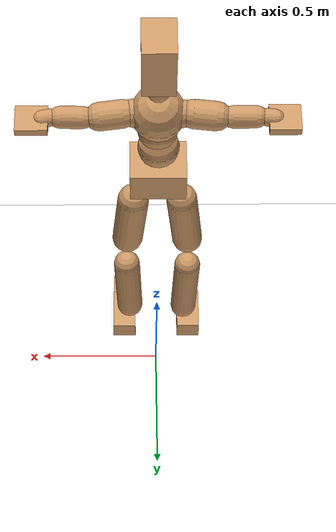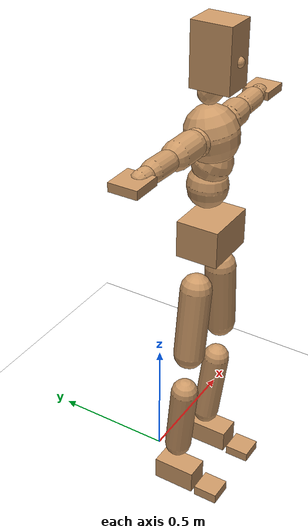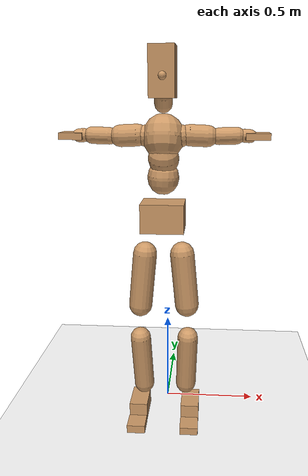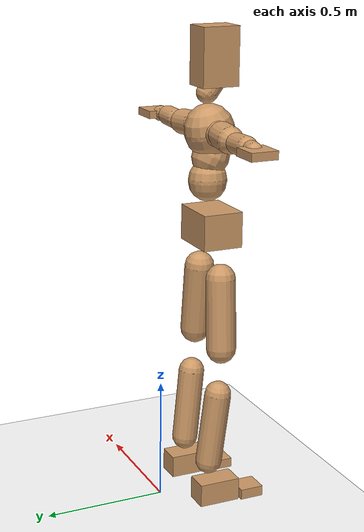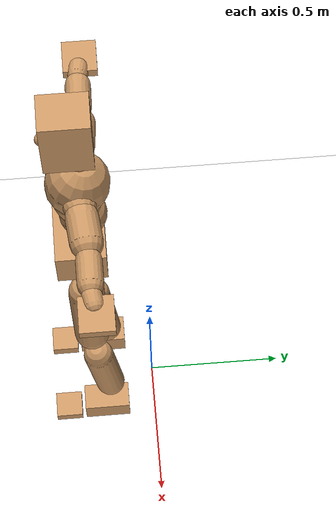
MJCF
<mujoco model="humanoid">
  <option integrator="implicitfast" />

  <visual>
    <global offwidth="1280" offheight="960" />
    <headlight active="1" ambient="0.34 0.34 0.34" diffuse="0.5 0.5 0.5" />
  </visual>

  <default>
    <joint damping="2" stiffness="2" armature="0.01" limited="true" solimplimit="0 .99 .01" />
    <geom condim="1" friction="0.7 0.005 0.0001" solimp=".99 .99 .003" solref="0.015 1" margin="0.001" rgba="0.8 0.6 .4 1" />
    <default class="smplcontact">
      <geom condim="3" friction="1. 0.005 0.0001" solref="0.015 1" solimp="0.98 0.98 0.001" priority="1" />
    </default>
    <default class="stiff_medium">
      <joint stiffness="10" />
    </default>
    <default class="stiff_medium_higher">
      <joint stiffness="50" />
    </default>
    <default class="stiff_high">
      <joint stiffness="100" />
    </default>
  </default>

  <asset>
    <texture type="skybox" builtin="gradient" rgb1="0.99 0.99 0.99" rgb2="0.608 0.828 0.892" width="100" />
    <texture builtin="flat" height="1278" mark="cross" markrgb="1 1 1" name="texgeom" random="0.01" rgb1="0.8 0.6 0.4" rgb2="0.8 0.6 0.4" type="cube" width="127" />
    <texture name="texplane" type="2d" builtin="checker" markrgb="1 1 1" rgb1="0.756 0.772 0.76" rgb2="0.6 0.6 0.6" width="100" height="100" />
    <material name="MatPlane" reflectance="0.5" texture="texplane" texrepeat="1 1" texuniform="true" />
    <material name="geom" texture="texgeom" texuniform="true" />
  </asset>

  <worldbody>
    <light name="tracking_light" pos="0 0 7" dir="0 0 -1" directional="true" cutoff="100" exponent="1" diffuse="1 1 1" specular="0.1 0.1 0.1" mode="trackcom" />
    <camera name="back" pos="0 3 2.4" xyaxes="-1 0 0 0 -1 2" mode="trackcom" />
    <camera name="side" pos="-3 0 2.4" xyaxes="0 -1 0 1 0 2" mode="trackcom" />
    <camera name="front_side" pos="-2.8 -2.8 0.8" xyaxes="0.5 -0.5 0 0.1 0.1 1" mode="trackcom" />
    <geom condim="3" name="floor" pos="0 0 0" rgba="1 1 1 1" size="100 100 .2" type="plane" material="MatPlane" />
    <body name="Pelvis" pos="-0.0018 -0.2233 1.16548" euler="90 0 0">
      <site name="Pelvis" size="0.01" />
      <freejoint name="Pelvis" />
      <geom type="box" pos="-0.0000 -0.0121 -0.0055" size="0.1069 0.0722 0.083" quat="1.0000 0.0000 0.0000 0.0000" density="3165.830099" name="Pelvis" />
      <body name="L_Hip" pos="0.086875 -0.11425 -0.0085">
        <joint name="L_Hip_x" type="hinge" pos="0 0 0" axis="1 0 0" stiffness="14.589841836734694" range="-160.0 22.92" class="stiff_medium" damping="24.10689143795971" armature="0.017703099984975993"/>
        <joint name="L_Hip_y" type="hinge" pos="0 0 0" axis="0 1 0" stiffness="14.527612551020406" range="-70.0 70.0" class="stiff_medium" damping="14.262213477061756" armature="0.014001662871370741"/>
        <joint name="L_Hip_z" type="hinge" pos="0 0 0" axis="0 0 1" stiffness="14.532940204081633" range="-28.65 90.0" class="stiff_medium" damping="16.042326803653772" armature="0.01770847782081624"/>
        <geom type="capsule" density="2040.816327" fromto="0.008625 -0.09375 -0.001125 0.03425 -0.37525 -0.0045" size="0.0615" name="L_Hip" />
        <body name="L_Knee" pos="0.042875 -0.469 -0.005625">
          <joint name="L_Knee_x" type="hinge" pos="0 0 0" axis="1 0 0" range="-5.16 171.89" damping="12.427866473289075" armature="0.016955687393418715" stiffness="2.8466087346938775"/>
          <joint name="L_Knee_y" type="hinge" pos="0 0 0" axis="0 1 0" range="-4.58 6.88" damping="11.131948599716754" armature="0.01340453819008715" stiffness="2.888953489795919"/>
          <joint name="L_Knee_z" type="hinge" pos="0 0 0" axis="0 0 1" range="-6.88 4.58" damping="12.396032357314198" armature="0.016980355499687946" stiffness="2.8279299387755104"/>
          <geom type="capsule" density="1234.567901" fromto="-0.003375 -0.0995 -0.010875 -0.013625 -0.398 -0.04375" size="0.0541" name="L_Knee" />
          <body name="L_Ankle" pos="-0.017 -0.4975 -0.054625">
            <joint name="L_Ankle_x" type="hinge" pos="0 0 0" axis="1 0 0" range="-45.84 45.84" class="stiff_medium" damping="7.851672460898017" armature="0.01369972454071652" stiffness="12.5"/>
            <joint name="L_Ankle_y" type="hinge" pos="0 0 0" axis="0 1 0" range="-74.48 22.92" class="stiff_medium" damping="3.90606547180543" armature="0.01356208664002718" stiffness="12.5"/>
            <joint name="L_Ankle_z" type="hinge" pos="0 0 0" axis="0 0 1" range="-4.58 4.58" class="stiff_medium" damping="7.548153538649445" armature="0.012661027076228031" stiffness="12.5"/>
            <geom type="box" pos="0.029125 -0.029875 0.03025" size="0.0483 0.0464 0.085" quat="1.0000 0.0000 0.0000 0.0000" density="449.071558" name="L_Ankle" class="smplcontact" />
            <body name="L_Toe" pos="0.033 -0.06975 0.149125">
              <joint name="L_Toe_x" type="hinge" pos="0 0 0" axis="1 0 0" range="-91.67 22.92" armature="0.012138557001779706" damping="2.4635905708720864" stiffness="2.5"/>
              <joint name="L_Toe_y" type="hinge" pos="0 0 0" axis="0 1 0" range="-4.58 4.58" armature="0.011506786054687992" damping="2.398623152423906" stiffness="2.5"/>
              <joint name="L_Toe_z" type="hinge" pos="0 0 0" axis="0 0 1" range="-4.58 4.58" armature="0.010229379204576448" damping="2.261567952171286" stiffness="2.5"/>
              <geom type="box" pos="-0.00375 0.006875 0.031" size="0.0478 0.02 0.0496" quat="1.0000 0.0000 0.0000 0.0000" density="423.206892" name="L_Toe" class="smplcontact" />
            </body>
          </body>
        </body>
      </body>
      <body name="R_Hip" pos="-0.084625 -0.113125 -0.005375">
        <joint name="R_Hip_x" type="hinge" pos="0 0 0" axis="1 0 0" stiffness="14.589841836734694" range="-160.0 22.92" class="stiff_medium" damping="24.10689143795971" armature="0.017703099984975993"/>
        <joint name="R_Hip_y" type="hinge" pos="0 0 0" axis="0 1 0" stiffness="14.527612551020406" range="-70.0 70.0" class="stiff_medium" damping="14.262213477061756" armature="0.014001662871370741"/>
        <joint name="R_Hip_z" type="hinge" pos="0 0 0" axis="0 0 1" stiffness="14.532940204081633" range="-90.0 28.65" class="stiff_medium" damping="16.042326803653772" armature="0.01770847782081624"/>
        <geom type="capsule" density="2040.816327" fromto="-0.009625 -0.095625 -0.00225 -0.03825 -0.382625 -0.008875" size="0.0606" name="R_Hip" />
        <body name="R_Knee" pos="-0.047875 -0.47825 -0.011125">
          <joint name="R_Knee_x" type="hinge" pos="0 0 0" axis="1 0 0" range="-5.16 171.89" damping="12.427866473289075" armature="0.016955687393418715" stiffness="2.8466087346938775"/>
          <joint name="R_Knee_y" type="hinge" pos="0 0 0" axis="0 1 0" range="-6.88 4.58" damping="11.131948599716754" armature="0.01340453819008715" stiffness="2.888953489795919"/>
          <joint name="R_Knee_z" type="hinge" pos="0 0 0" axis="0 0 1" range="-4.58 6.88" damping="12.396032357314198" armature="0.016980355499687946" stiffness="2.8279299387755104"/>
          <geom type="capsule" density="1234.567901" fromto="0.004 -0.099625 -0.010625 0.01575 -0.398375 -0.04225" size="0.0541" name="R_Knee" />
          <body name="R_Ankle" pos="0.01975 -0.498 -0.052875">
            <joint name="R_Ankle_x" type="hinge" pos="0 0 0" axis="1 0 0" range="-45.84 45.84" class="stiff_medium" damping="7.851672460898017" armature="0.01369972454071652" stiffness="12.5"/>
            <joint name="R_Ankle_y" type="hinge" pos="0 0 0" axis="0 1 0" range="-22.92 74.48" class="stiff_medium" damping="3.90606547180543" armature="0.01356208664002718" stiffness="12.5"/>
            <joint name="R_Ankle_z" type="hinge" pos="0 0 0" axis="0 0 1" range="-4.58 4.58" class="stiff_medium" damping="7.548153538649445" armature="0.012661027076228031" stiffness="12.5"/>
            <geom type="box" pos="-0.0265 -0.02175 0.032" size="0.0483 0.0478 0.0865" quat="1.0000 0.0000 0.0000 0.0000" density="434.700981" name="R_Ankle" class="smplcontact" />
            <body name="R_Toe" pos="-0.03175 -0.060125 0.154125">
              <joint name="R_Toe_x" type="hinge" pos="0 0 0" axis="1 0 0" range="-91.67 22.92" armature="0.012138557001779706" damping="2.4635905708720864" stiffness="2.5"/>
              <joint name="R_Toe_y" type="hinge" pos="0 0 0" axis="0 1 0" range="-4.58 4.58" armature="0.011506786054687992" damping="2.398623152423906" stiffness="2.5"/>
              <joint name="R_Toe_z" type="hinge" pos="0 0 0" axis="0 0 1" range="-4.58 4.58" armature="0.010229379204576448" damping="2.261567952171286" stiffness="2.5"/>
              <geom type="box" pos="0.00525 0.005625 0.028375" size="0.0479 0.0216 0.0493" quat="1.0000 0.0000 0.0000 0.0000" density="407.384095" name="R_Toe" class="smplcontact" />
            </body>
          </body>
        </body>
      </body>
      <body name="Torso" pos="-0.0025 0.109 -0.0267">
        <joint name="Torso_x" type="hinge" pos="0 0 0" axis="1 0 0" range="-25.78 57.3" class="stiff_medium" damping="12.833128643120643" armature="0.008389867755726707" stiffness="8.724237142857143"/>
        <joint name="Torso_y" type="hinge" pos="0 0 0" axis="0 1 0" range="-57.3 57.3" class="stiff_high" damping="9.641007877053584" armature="0.002615251180296176" stiffness="88.85287346938776"/>
        <joint name="Torso_z" type="hinge" pos="0 0 0" axis="0 0 1" range="-34.38 34.38" class="stiff_high" damping="15.256621848072813" armature="0.006404603814601964" stiffness="90.85827826086955"/>
        <geom type="capsule" density="2040.816327" fromto="0.0025 0.0608 0.0005 0.003 0.0743 0.0006" size="0.0769" name="Torso" />
        <body name="Spine" pos="0.0055 0.1352 0.0011">
          <joint name="Spine_x" type="hinge" pos="0 0 0" axis="1 0 0" stiffness="8.524132708333333" range="-25.78 57.3" class="stiff_medium" damping="12.59332818615459" armature="0.008268911088118537"/>
          <joint name="Spine_y" type="hinge" pos="0 0 0" axis="0 1 0" stiffness="8.372724772727274" range="-57.3 57.3" class="stiff_high" damping="3.7058359647278705" armature="0.002562864197858745"/>
          <joint name="Spine_z" type="hinge" pos="0 0 0" axis="0 0 1" stiffness="17.091765581395343" range="-34.38 34.38" class="stiff_high" damping="7.912330782724084" armature="0.005087324565503508"/>
          <geom type="capsule" density="2040.816327" fromto="0.0007 0.0238 0.0114 0.0008 0.0291 0.014" size="0.0755" name="Spine" />
          <body name="Chest" pos="0.0015 0.0529 0.0254">
            <joint name="Chest_x" type="hinge" pos="0 0 0" axis="1 0 0" stiffness="8.200278372093024" range="-25.78 57.3" class="stiff_medium" damping="12.31981661549887" armature="0.008226164178146745"/>
            <joint name="Chest_y" type="hinge" pos="0 0 0" axis="0 1 0" stiffness="6.66116392857143" range="-57.3 57.3" class="stiff_high" damping="3.2862373670032503" armature="0.0025331899922285133"/>
            <joint name="Chest_z" type="hinge" pos="0 0 0" axis="0 0 1" stiffness="16.64932651162791" range="-34.38 34.38" class="stiff_high" damping="7.360514262532794" armature="0.004519466278837104"/>
            <geom type="capsule" density="2040.816327" fromto="-0.0009 0.0682 -0.0173 -0.001 0.0833 -0.0212" size="0.1002" name="Chest" />
            <body name="Neck" pos="-0.0028 0.2139 -0.0429">
              <joint name="Neck_x" type="hinge" pos="0 0 0" axis="1 0 0" range="-28.65 57.3" class="stiff_medium_higher" damping="10.000000000000027" armature="0.010000000000000054" stiffness="50.0"/>
              <joint name="Neck_y" type="hinge" pos="0 0 0" axis="0 1 0" range="-40.11 40.11" class="stiff_medium_higher" damping="10.0" armature="0.01" stiffness="50.0"/>
              <joint name="Neck_z" type="hinge" pos="0 0 0" axis="0 0 1" range="-40.11 40.11" class="stiff_medium_higher" damping="10.000000000000028" armature="0.010000000000000061" stiffness="50.0"/>
              <geom type="capsule" density="1000" fromto="0.001 0.013 0.0103 0.0041 0.052 0.0411" size="0.0436" name="Neck" />
              <body name="Head" pos="0.0052 0.065 0.0513">
                <joint name="Head_x" type="hinge" pos="0 0 0" axis="1 0 0" range="-28.65 57.3" class="stiff_medium_higher" damping="2.0000000000000036" armature="0.010000000000000035" stiffness="50.0"/>
                <joint name="Head_y" type="hinge" pos="0 0 0" axis="0 1 0" range="-40.11 40.11" class="stiff_medium_higher" damping="2.0" armature="0.01" stiffness="50.0"/>
                <joint name="Head_z" type="hinge" pos="0 0 0" axis="0 0 1" range="-40.11 40.11" class="stiff_medium_higher" damping="2.000000000000007" armature="0.010000000000000071" stiffness="50.0"/>
                <geom type="box" pos="-0.0042 0.0876 -0.0116" size="0.0606 0.1154 0.076" quat="1.0000 0.0000 0.0000 0.0000" density="1018.069894" name="Head" />
                <geom type="capsule" name="nose" size="0.02 0.01" pos="0 0.07 0.05" quat="1 0 0 0" mass="0" contype="0" conaffinity="0" />
              </body>
            </body>
            <body name="L_Thorax" pos="0.04334 0.066935 -0.018755">
              <joint name="L_Thorax_x" type="hinge" pos="0 0 0" axis="1 0 0" range="-10.89 4.58" class="stiff_medium_higher" damping="8.43470362156277" armature="0.004456108006307102" stiffness="19.956940306122444"/>
              <joint name="L_Thorax_y" type="hinge" pos="0 0 0" axis="0 1 0" range="-28.65 17.19" class="stiff_medium_higher" damping="6.022763730189365" armature="0.002308462047497596" stiffness="19.641693367346935"/>
              <joint name="L_Thorax_z" type="hinge" pos="0 0 0" axis="0 0 1" range="-31.51 40.11" class="stiff_medium_higher" damping="6.020659652326864" armature="0.0023064402545495085" stiffness="19.64517755102041"/>
              <geom type="capsule" density="1000" fromto="0.01001 0.003355 -0.00099 0.04004 0.01342 -0.003905" size="0.0521" name="L_Thorax" />
              <body name="L_Shoulder" pos="0.05005 0.016775 -0.004895">
                <joint name="L_Shoulder_x" type="hinge" pos="0 0 0" axis="1 0 0" range="-97.4 97.4" class="stiff_medium" damping="2.750732619270388" armature="0.005207580254125744" stiffness="4.036066215805471"/>
                <joint name="L_Shoulder_y" type="hinge" pos="0 0 0" axis="0 1 0" range="-108.86 80.21" class="stiff_medium" damping="1.8298767221096353" armature="0.0023536822566645405" stiffness="3.9517852040816326"/>
                <joint name="L_Shoulder_z" type="hinge" pos="0 0 0" axis="0 0 1" range="-97.4 85.94" class="stiff_medium" damping="1.829909535734247" armature="0.002350748922258391" stiffness="3.9568582653061224"/>
                <geom type="capsule" density="1000" fromto="0.028545 -0.00143 -0.003025 0.114235 -0.00561 -0.0121" size="0.0517" name="L_Shoulder" />
                <body name="L_Elbow" pos="0.14278 -0.00704 -0.015125">
                  <joint name="L_Elbow_x" type="hinge" pos="0 0 0" axis="1 0 0" range="-17.19 4.58" damping="2.6383809861162595" armature="0.0066028902176270875" stiffness="0.8433948163265306"/>
                  <joint name="L_Elbow_y" type="hinge" pos="0 0 0" axis="0 1 0" range="-180.0 17.19" damping="1.649331180076203" armature="0.002582836246104816" stiffness="0.842575551020408"/>
                  <joint name="L_Elbow_z" type="hinge" pos="0 0 0" axis="0 0 1" range="-100.84 4.58" damping="1.6457692537144117" armature="0.0025674453810837143" stiffness="0.8439693265306122"/>
                  <geom type="capsule" density="1000" fromto="0.02739 0.00099 -0.00011 0.10967 0.00396 -0.000495" size="0.0405" name="L_Elbow" />
                  <body name="L_Wrist" pos="0.13706 0.00495 -0.00066">
                    <joint name="L_Wrist_x" type="hinge" pos="0 0 0" axis="1 0 0" range="-180.0 22.92" armature="0.007461834395239045" damping="1.2279494204587622" stiffness="1.0103814285714288"/>
                    <joint name="L_Wrist_y" type="hinge" pos="0 0 0" axis="0 1 0" range="-17.19 17.19" armature="0.003664915616612764" damping="0.8549575346764119" stiffness="0.9972294897959184"/>
                    <joint name="L_Wrist_z" type="hinge" pos="0 0 0" axis="0 0 1" range="-22.92 22.92" armature="0.0034414222692762063" damping="0.8306797080467495" stiffness="1.002534306122449"/>
                    <geom type="capsule" density="1000" fromto="0.00924 -0.00088 -0.00165 0.03696 -0.003575 -0.0066" size="0.0318" name="L_Wrist" class="smplcontact" />
                    <body name="L_Hand" pos="0.0462 -0.00451 -0.008195">
                      <joint name="L_Hand_x" type="hinge" pos="0 0 0" axis="1 0 0" range="-17.19 17.19" armature="0.009696126030368997" damping="1.4605299472044997" stiffness="1.0999999999999999"/>
                      <joint name="L_Hand_y" type="hinge" pos="0 0 0" axis="0 1 0" range="-51.57 51.57" armature="0.006325063576496694" damping="1.1796245109479848" stiffness="1.0999999999999999"/>
                      <joint name="L_Hand_z" type="hinge" pos="0 0 0" axis="0 0 1" range="-91.67 91.67" armature="0.005426460820316668" damping="1.0926213344382705" stiffness="1.0999999999999999"/>
                      <geom type="box" pos="0.027115 0.00055 -0.00319" size="0.0585 0.0158 0.0538" quat="1.0000 0.0000 0.0000 0.0000" density="400.552564" name="L_Hand" class="smplcontact" />
                    </body>
                  </body>
                </body>
              </body>
            </body>
            <body name="R_Thorax" pos="-0.04499 0.06534 -0.02123">
              <joint name="R_Thorax_x" type="hinge" pos="0 0 0" axis="1 0 0" range="-10.89 4.58" class="stiff_medium_higher" damping="8.43470362156277" armature="0.004456108006307102" stiffness="19.956940306122444"/>
              <joint name="R_Thorax_y" type="hinge" pos="0 0 0" axis="0 1 0" range="-17.19 28.65" class="stiff_medium_higher" damping="6.022763730189365" armature="0.002308462047497596" stiffness="19.641693367346935"/>
              <joint name="R_Thorax_z" type="hinge" pos="0 0 0" axis="0 0 1" range="-40.11 31.51" class="stiff_medium_higher" damping="6.020659652326864" armature="0.0023064402545495085" stiffness="19.64517755102041"/>
              <geom type="capsule" density="1000" fromto="-0.01056 0.003575 -0.00099 -0.04224 0.0143 -0.004015" size="0.0511" name="R_Thorax" />
              <body name="R_Shoulder" pos="-0.0528 0.01793 -0.005005">
                <joint name="R_Shoulder_x" type="hinge" pos="0 0 0" axis="1 0 0" range="-97.4 97.4" class="stiff_medium" damping="2.750732619270388" armature="0.005207580254125744" stiffness="4.036066215805471"/>
                <joint name="R_Shoulder_y" type="hinge" pos="0 0 0" axis="0 1 0" range="-80.21 108.86" class="stiff_medium" damping="1.8298767221096353" armature="0.0023536822566645405" stiffness="3.9517852040816326"/>
                <joint name="R_Shoulder_z" type="hinge" pos="0 0 0" axis="0 0 1" range="-85.94 97.4" class="stiff_medium" damping="1.829909535734247" armature="0.002350748922258391" stiffness="3.9568582653061224"/>
                <geom type="capsule" density="1000" fromto="-0.027885 -0.001485 -0.002365 -0.11165 -0.005885 -0.009405" size="0.0531" name="R_Shoulder" />
                <body name="R_Elbow" pos="-0.139535 -0.007315 -0.01177">
                  <joint name="R_Elbow_x" type="hinge" pos="0 0 0" axis="1 0 0" range="-17.19 4.58" damping="2.6383809861162595" armature="0.0066028902176270875" stiffness="0.8433948163265306"/>
                  <joint name="R_Elbow_y" type="hinge" pos="0 0 0" axis="0 1 0" range="-17.19 180.0" damping="1.649331180076203" armature="0.002582836246104816" stiffness="0.842575551020408"/>
                  <joint name="R_Elbow_z" type="hinge" pos="0 0 0" axis="0 0 1" range="-4.58 100.84" damping="1.6457692537144117" armature="0.0025674453810837143" stiffness="0.8439693265306122"/>
                  <geom type="capsule" density="1000" fromto="-0.028105 0.00088 -0.000605 -0.11231 0.00341 -0.00242" size="0.0408" name="R_Elbow" />
                  <body name="R_Wrist" pos="-0.140415 0.00429 -0.00308">
                    <joint name="R_Wrist_x" type="hinge" pos="0 0 0" axis="1 0 0" range="-180.0 22.92" armature="0.007461834395239045" damping="1.2279494204587622" stiffness="1.0103814285714288"/>
                    <joint name="R_Wrist_y" type="hinge" pos="0 0 0" axis="0 1 0" range="-17.19 17.19" armature="0.003664915616612764" damping="0.8549575346764119" stiffness="0.9972294897959184"/>
                    <joint name="R_Wrist_z" type="hinge" pos="0 0 0" axis="0 0 1" range="-22.92 22.92" armature="0.0034414222692762063" damping="0.8306797080467495" stiffness="1.002534306122449"/>
                    <geom type="capsule" density="1000" fromto="-0.009295 -0.00066 -0.001155 -0.037235 -0.002695 -0.004565" size="0.0326" name="R_Wrist" class="smplcontact" />
                    <body name="R_Hand" pos="-0.04653 -0.003355 -0.005665">
                      <joint name="R_Hand_x" type="hinge" pos="0 0 0" axis="1 0 0" range="-17.19 17.19" armature="0.009696126030368997" damping="1.4605299472044997" stiffness="1.0999999999999999"/>
                      <joint name="R_Hand_y" type="hinge" pos="0 0 0" axis="0 1 0" range="-51.57 51.57" armature="0.006325063576496694" damping="1.1796245109479848" stiffness="1.0999999999999999"/>
                      <joint name="R_Hand_z" type="hinge" pos="0 0 0" axis="0 0 1" range="-91.67 91.67" armature="0.005426460820316668" damping="1.0926213344382705" stiffness="1.0999999999999999"/>
                      <geom type="box" pos="-0.02541 -0.000495 -0.004345" size="0.0569 0.0164 0.0546" quat="1.0000 0.0000 0.0000 0.0000" density="403.679611" name="R_Hand" class="smplcontact" />
                    </body>
                  </body>
                </body>
              </body>
            </body>
          </body>
        </body>
      </body>
    </body>
  </worldbody>
  <actuator>
    <general name="L_Hip_x" joint="L_Hip_x" biastype="affine" gainprm="419.21001901187765" biasprm="-314.15541988928595 -262.6171530612245 -3.214252191727961" ctrllimited="true" ctrlrange="-1 1" forcerange="-525.234306122449 525.234306122449" />
    <general name="L_Hip_y" joint="L_Hip_y" biastype="affine" gainprm="319.47888605139207" biasprm="0.0 -261.4970259183673 -2.852442695412351" ctrllimited="true" ctrlrange="-1 1" forcerange="-522.9940518367346 522.9940518367346" />
    <general name="L_Hip_z" joint="L_Hip_z" biastype="affine" gainprm="270.857650054052" biasprm="140.0515535677715 -261.5929236734694 -3.2084653607307545" ctrllimited="true" ctrlrange="-1 1" forcerange="-523.1858473469388 523.1858473469388" />
    <general name="L_Knee_x" joint="L_Knee_x" biastype="affine" gainprm="395.8344512323349" biasprm="372.7618077038531 -256.194786122449 -3.106966618322269" ctrllimited="true" ctrlrange="-1 1" forcerange="-512.389572244898 512.389572244898" />
    <general name="L_Knee_y" joint="L_Knee_y" biastype="affine" gainprm="26.002496647202126" biasprm="5.218651159560636 -260.0058140816327 -2.7829871499291885" ctrllimited="true" ctrlrange="-1 1" forcerange="-520.0116281632654 520.0116281632654" />
    <general name="L_Knee_z" joint="L_Knee_z" biastype="affine" gainprm="25.45324423230062" biasprm="-5.108417254301171 -254.51369448979594 -3.0990080893285494" ctrllimited="true" ctrlrange="-1 1" forcerange="-509.0273889795919 509.0273889795919" />
    <general name="L_Ankle_x" joint="L_Ankle_x" biastype="affine" gainprm="90.00662952534759" biasprm="0.0 -112.5 -2.6172241536326726" ctrllimited="true" ctrlrange="-1 1" forcerange="-225.0 225.0" />
    <general name="L_Ankle_y" joint="L_Ankle_y" biastype="affine" gainprm="95.62222639363935" biasprm="-50.61891163096555 -112.5 -2.6040436478702866" ctrllimited="true" ctrlrange="-1 1" forcerange="-225.0 225.0" />
    <general name="L_Ankle_z" joint="L_Ankle_z" biastype="affine" gainprm="8.992808970900782" biasprm="0.0 -112.5 -2.516051179549815" ctrllimited="true" ctrlrange="-1 1" forcerange="-225.0 225.0" />
    <general name="L_Toe_x" joint="L_Toe_x" biastype="affine" gainprm="89.99877554371359" biasprm="-53.996123733574564 -90.0 -0.9854362283488346" ctrllimited="true" ctrlrange="-1 1" forcerange="-180.0 180.0" />
    <general name="L_Toe_y" joint="L_Toe_y" biastype="affine" gainprm="7.194247176720626" biasprm="0.0 -90.0 -0.9594492609695625" ctrllimited="true" ctrlrange="-1 1" forcerange="-180.0 180.0" />
    <general name="L_Toe_z" joint="L_Toe_z" biastype="affine" gainprm="7.194247176720626" biasprm="0.0 -90.0 -0.9046271808685145" ctrllimited="true" ctrlrange="-1 1" forcerange="-180.0 180.0" />
    <general name="R_Hip_x" joint="R_Hip_x" biastype="affine" gainprm="419.21001901187765" biasprm="-314.15541988928595 -262.6171530612245 -3.214252191727961" ctrllimited="true" ctrlrange="-1 1" forcerange="-525.234306122449 525.234306122449" />
    <general name="R_Hip_y" joint="R_Hip_y" biastype="affine" gainprm="319.47888605139207" biasprm="0.0 -261.4970259183673 -2.852442695412351" ctrllimited="true" ctrlrange="-1 1" forcerange="-522.9940518367346 522.9940518367346" />
    <general name="R_Hip_z" joint="R_Hip_z" biastype="affine" gainprm="270.857650054052" biasprm="-140.0515535677715 -261.5929236734694 -3.2084653607307545" ctrllimited="true" ctrlrange="-1 1" forcerange="-523.1858473469388 523.1858473469388" />
    <general name="R_Knee_x" joint="R_Knee_x" biastype="affine" gainprm="395.8344512323349" biasprm="372.7618077038531 -256.194786122449 -3.106966618322269" ctrllimited="true" ctrlrange="-1 1" forcerange="-512.389572244898 512.389572244898" />
    <general name="R_Knee_y" joint="R_Knee_y" biastype="affine" gainprm="26.002496647202126" biasprm="-5.218651159560636 -260.0058140816327 -2.7829871499291885" ctrllimited="true" ctrlrange="-1 1" forcerange="-520.0116281632654 520.0116281632654" />
    <general name="R_Knee_z" joint="R_Knee_z" biastype="affine" gainprm="25.45324423230062" biasprm="5.108417254301171 -254.51369448979594 -3.0990080893285494" ctrllimited="true" ctrlrange="-1 1" forcerange="-509.0273889795919 509.0273889795919" />
    <general name="R_Ankle_x" joint="R_Ankle_x" biastype="affine" gainprm="90.00662952534759" biasprm="0.0 -112.5 -2.6172241536326726" ctrllimited="true" ctrlrange="-1 1" forcerange="-225.0 225.0" />
    <general name="R_Ankle_y" joint="R_Ankle_y" biastype="affine" gainprm="95.62222639363935" biasprm="50.61891163096555 -112.5 -2.6040436478702866" ctrllimited="true" ctrlrange="-1 1" forcerange="-225.0 225.0" />
    <general name="R_Ankle_z" joint="R_Ankle_z" biastype="affine" gainprm="8.992808970900782" biasprm="0.0 -112.5 -2.516051179549815" ctrllimited="true" ctrlrange="-1 1" forcerange="-225.0 225.0" />
    <general name="R_Toe_x" joint="R_Toe_x" biastype="affine" gainprm="89.99877554371359" biasprm="-53.996123733574564 -90.0 -0.9854362283488346" ctrllimited="true" ctrlrange="-1 1" forcerange="-180.0 180.0" />
    <general name="R_Toe_y" joint="R_Toe_y" biastype="affine" gainprm="7.194247176720626" biasprm="0.0 -90.0 -0.9594492609695625" ctrllimited="true" ctrlrange="-1 1" forcerange="-180.0 180.0" />
    <general name="R_Toe_z" joint="R_Toe_z" biastype="affine" gainprm="7.194247176720626" biasprm="0.0 -90.0 -0.9046271808685145" ctrllimited="true" ctrlrange="-1 1" forcerange="-180.0 180.0" />
    <general name="Torso_x" joint="Torso_x" biastype="affine" gainprm="151.80377221252243" biasprm="57.593342563056154 -209.38169142857143 -3.422167638165505" ctrllimited="true" ctrlrange="-1 1" forcerange="-314.07253714285713 314.07253714285713" />
    <general name="Torso_y" joint="Torso_y" biastype="affine" gainprm="213.26260438991383" biasprm="0.0 -213.24689632653062 -1.9282015754107167" ctrllimited="true" ctrlrange="-1 1" forcerange="-319.8703444897959 319.8703444897959" />
    <general name="Torso_z" joint="Torso_z" biastype="affine" gainprm="130.84555825179245" biasprm="0.0 -218.05986782608693 -3.0513243696145627" ctrllimited="true" ctrlrange="-1 1" forcerange="-327.0898017391304 327.0898017391304" />
    <general name="Spine_x" joint="Spine_x" biastype="affine" gainprm="148.32190812518058" biasprm="56.272346462514335 -204.579185 -3.358220849641224" ctrllimited="true" ctrlrange="-1 1" forcerange="-306.86877749999996 306.86877749999996" />
    <general name="Spine_y" joint="Spine_y" biastype="affine" gainprm="200.96019646308363" biasprm="0.0 -200.94539454545458 -1.8529179823639352" ctrllimited="true" ctrlrange="-1 1" forcerange="-301.41809181818184 301.41809181818184" />
    <general name="Spine_z" joint="Spine_z" biastype="affine" gainprm="123.06977700949903" biasprm="0.0 -205.10118697674412 -2.637443594241361" ctrllimited="true" ctrlrange="-1 1" forcerange="-307.6517804651162 307.6517804651162" />
    <general name="Chest_x" joint="Chest_x" biastype="affine" gainprm="142.68676672729774" biasprm="54.13441125715483 -196.80668093023257 -3.285284430799699" ctrllimited="true" ctrlrange="-1 1" forcerange="-295.21002139534886 295.21002139534886" />
    <general name="Chest_y" joint="Chest_y" biastype="affine" gainprm="159.87971038041" biasprm="0.0 -159.8679342857143 -1.6431186835016252" ctrllimited="true" ctrlrange="-1 1" forcerange="-239.80190142857145 239.80190142857145" />
    <general name="Chest_z" joint="Chest_z" biastype="affine" gainprm="119.88398105429127" biasprm="0.0 -199.7919181395349 -2.453504754177598" ctrllimited="true" ctrlrange="-1 1" forcerange="-299.68787720930237 299.68787720930237" />
    <general name="Neck_x" joint="Neck_x" biastype="affine" gainprm="27.00198885760427" biasprm="9.000662952534757 -36.0 -0.8000000000000022" ctrllimited="true" ctrlrange="-1 1" forcerange="-72.0 72.0" />
    <general name="Neck_y" joint="Neck_y" biastype="affine" gainprm="25.20185626709732" biasprm="0.0 -36.0 -0.8" ctrllimited="true" ctrlrange="-1 1" forcerange="-72.0 72.0" />
    <general name="Neck_z" joint="Neck_z" biastype="affine" gainprm="25.20185626709732" biasprm="0.0 -36.0 -0.8000000000000024" ctrllimited="true" ctrlrange="-1 1" forcerange="-72.0 72.0" />
    <general name="Head_x" joint="Head_x" biastype="affine" gainprm="18.001325905069514" biasprm="6.000441968356505 -24.0 -0.8000000000000015" ctrllimited="true" ctrlrange="-1 1" forcerange="-48.0 48.0" />
    <general name="Head_y" joint="Head_y" biastype="affine" gainprm="16.801237511398213" biasprm="0.0 -24.0 -0.8" ctrllimited="true" ctrlrange="-1 1" forcerange="-48.0 48.0" />
    <general name="Head_z" joint="Head_z" biastype="affine" gainprm="16.801237511398213" biasprm="0.0 -24.0 -0.8000000000000029" ctrllimited="true" ctrlrange="-1 1" forcerange="-48.0 48.0" />
    <general name="L_Thorax_x" joint="L_Thorax_x" biastype="affine" gainprm="6.466106980153143" biasprm="-2.6374360080650514 -47.89665673469387 -0.6747762897250217" ctrllimited="true" ctrlrange="-1 1" forcerange="-95.79331346938774 95.79331346938774" />
    <general name="L_Thorax_y" joint="L_Thorax_y" biastype="affine" gainprm="18.857414593762904" biasprm="-4.714353648440726 -47.140064081632644 -0.48182109841514925" ctrllimited="true" ctrlrange="-1 1" forcerange="-94.28012816326529 94.28012816326529" />
    <general name="L_Thorax_z" joint="L_Thorax_z" biastype="affine" gainprm="29.46787972505706" biasprm="3.538449673771163 -47.14842612244898 -0.48165277218614916" ctrllimited="true" ctrlrange="-1 1" forcerange="-94.29685224489796 94.29685224489796" />
    <general name="L_Shoulder_x" joint="L_Shoulder_x" biastype="affine" gainprm="32.93334506047744" biasprm="0.0 -19.373117835866264 -0.7335286984721036" ctrllimited="true" ctrlrange="-1 1" forcerange="-38.74623567173253 38.74623567173253" />
    <general name="L_Shoulder_y" joint="L_Shoulder_y" biastype="affine" gainprm="31.297133640991394" biasprm="-4.74249155770034 -18.968568979591836 -0.4879671258959028" ctrllimited="true" ctrlrange="-1 1" forcerange="-37.93713795918367 37.93713795918367" />
    <general name="L_Shoulder_z" joint="L_Shoulder_z" biastype="affine" gainprm="30.387595059587213" biasprm="-1.8994318718384982 -18.992919673469387 -0.4879758761957992" ctrllimited="true" ctrlrange="-1 1" forcerange="-37.985839346938775 37.985839346938775" />
    <general name="L_Elbow_x" joint="L_Elbow_x" biastype="affine" gainprm="5.768185641845626" biasprm="-3.3411493313584466 -30.3622133877551 -0.4221409577786015" ctrllimited="true" ctrlrange="-1 1" forcerange="-60.7244267755102 60.7244267755102" />
    <general name="L_Elbow_y" joint="L_Elbow_y" biastype="affine" gainprm="52.19676802931011" biasprm="-43.09628177317298 -30.33271983673469 -0.2638929888121925" ctrllimited="true" ctrlrange="-1 1" forcerange="-60.66543967346938 60.66543967346938" />
    <general name="L_Elbow_z" joint="L_Elbow_z" biastype="affine" gainprm="27.951141407994328" biasprm="-25.522451830141666 -30.382895755102037 -0.26332308059430587" ctrllimited="true" ctrlrange="-1 1" forcerange="-60.765791510204075 60.765791510204075" />
    <general name="L_Wrist_x" joint="L_Wrist_x" biastype="affine" gainprm="10.735167645580283" biasprm="-8.310073594361082 -6.062288571428573 -0.4911797681835049" ctrllimited="true" ctrlrange="-1 1" forcerange="-12.124577142857145 12.124577142857145" />
    <general name="L_Wrist_y" joint="L_Wrist_y" biastype="affine" gainprm="1.7951453047962525" biasprm="0.0 -5.9833769387755105 -0.3419830138705648" ctrllimited="true" ctrlrange="-1 1" forcerange="-11.966753877551021 11.966753877551021" />
    <general name="L_Wrist_z" joint="L_Wrist_z" biastype="affine" gainprm="2.4062595700697247" biasprm="0.0 -6.015205836734694 -0.3322718832186998" ctrllimited="true" ctrlrange="-1 1" forcerange="-12.030411673469388 12.030411673469388" />
    <general name="L_Hand_x" joint="L_Hand_x" biastype="affine" gainprm="1.9801458495576467" biasprm="0.0 -6.6 -0.5842119788817999" ctrllimited="true" ctrlrange="-1 1" forcerange="-13.2 13.2" />
    <general name="L_Hand_y" joint="L_Hand_y" biastype="affine" gainprm="5.940437548672939" biasprm="0.0 -6.6 -0.47184980437919394" ctrllimited="true" ctrlrange="-1 1" forcerange="-13.2 13.2" />
    <general name="L_Hand_z" joint="L_Hand_z" biastype="affine" gainprm="10.55962594700113" biasprm="0.0 -6.6 -0.4370485337753082" ctrllimited="true" ctrlrange="-1 1" forcerange="-13.2 13.2" />
    <general name="R_Thorax_x" joint="R_Thorax_x" biastype="affine" gainprm="6.466106980153143" biasprm="-2.6374360080650514 -47.89665673469387 -0.6747762897250217" ctrllimited="true" ctrlrange="-1 1" forcerange="-95.79331346938774 95.79331346938774" />
    <general name="R_Thorax_y" joint="R_Thorax_y" biastype="affine" gainprm="18.857414593762904" biasprm="4.714353648440723 -47.140064081632644 -0.48182109841514925" ctrllimited="true" ctrlrange="-1 1" forcerange="-94.28012816326529 94.28012816326529" />
    <general name="R_Thorax_z" joint="R_Thorax_z" biastype="affine" gainprm="29.46787972505706" biasprm="-3.538449673771163 -47.14842612244898 -0.48165277218614916" ctrllimited="true" ctrlrange="-1 1" forcerange="-94.29685224489796 94.29685224489796" />
    <general name="R_Shoulder_x" joint="R_Shoulder_x" biastype="affine" gainprm="32.93334506047744" biasprm="0.0 -19.373117835866264 -0.7335286984721036" ctrllimited="true" ctrlrange="-1 1" forcerange="-38.74623567173253 38.74623567173253" />
    <general name="R_Shoulder_y" joint="R_Shoulder_y" biastype="affine" gainprm="31.297133640991394" biasprm="4.74249155770034 -18.968568979591836 -0.4879671258959028" ctrllimited="true" ctrlrange="-1 1" forcerange="-37.93713795918367 37.93713795918367" />
    <general name="R_Shoulder_z" joint="R_Shoulder_z" biastype="affine" gainprm="30.387595059587213" biasprm="1.899431871838494 -18.992919673469387 -0.4879758761957992" ctrllimited="true" ctrlrange="-1 1" forcerange="-37.985839346938775 37.985839346938775" />
    <general name="R_Elbow_x" joint="R_Elbow_x" biastype="affine" gainprm="5.768185641845626" biasprm="-3.3411493313584466 -30.3622133877551 -0.4221409577786015" ctrllimited="true" ctrlrange="-1 1" forcerange="-60.7244267755102 60.7244267755102" />
    <general name="R_Elbow_y" joint="R_Elbow_y" biastype="affine" gainprm="52.19676802931011" biasprm="43.09628177317298 -30.33271983673469 -0.2638929888121925" ctrllimited="true" ctrlrange="-1 1" forcerange="-60.66543967346938 60.66543967346938" />
    <general name="R_Elbow_z" joint="R_Elbow_z" biastype="affine" gainprm="27.951141407994328" biasprm="25.522451830141662 -30.382895755102037 -0.26332308059430587" ctrllimited="true" ctrlrange="-1 1" forcerange="-60.765791510204075 60.765791510204075" />
    <general name="R_Wrist_x" joint="R_Wrist_x" biastype="affine" gainprm="10.735167645580283" biasprm="-8.310073594361082 -6.062288571428573 -0.4911797681835049" ctrllimited="true" ctrlrange="-1 1" forcerange="-12.124577142857145 12.124577142857145" />
    <general name="R_Wrist_y" joint="R_Wrist_y" biastype="affine" gainprm="1.7951453047962525" biasprm="0.0 -5.9833769387755105 -0.3419830138705648" ctrllimited="true" ctrlrange="-1 1" forcerange="-11.966753877551021 11.966753877551021" />
    <general name="R_Wrist_z" joint="R_Wrist_z" biastype="affine" gainprm="2.4062595700697247" biasprm="0.0 -6.015205836734694 -0.3322718832186998" ctrllimited="true" ctrlrange="-1 1" forcerange="-12.030411673469388 12.030411673469388" />
    <general name="R_Hand_x" joint="R_Hand_x" biastype="affine" gainprm="1.9801458495576467" biasprm="0.0 -6.6 -0.5842119788817999" ctrllimited="true" ctrlrange="-1 1" forcerange="-13.2 13.2" />
    <general name="R_Hand_y" joint="R_Hand_y" biastype="affine" gainprm="5.940437548672939" biasprm="0.0 -6.6 -0.47184980437919394" ctrllimited="true" ctrlrange="-1 1" forcerange="-13.2 13.2" />
    <general name="R_Hand_z" joint="R_Hand_z" biastype="affine" gainprm="10.55962594700113" biasprm="0.0 -6.6 -0.4370485337753082" ctrllimited="true" ctrlrange="-1 1" forcerange="-13.2 13.2" />
  </actuator>
  <contact>
    <exclude body1="Torso" body2="Chest" />
    <exclude body1="Head" body2="Chest" />
    <exclude body1="R_Knee" body2="R_Toe" />
    <exclude body1="R_Knee" body2="L_Ankle" />
    <exclude body1="R_Knee" body2="L_Toe" />
    <exclude body1="L_Knee" body2="L_Toe" />
    <exclude body1="L_Knee" body2="R_Ankle" />
    <exclude body1="L_Knee" body2="R_Toe" />
    <exclude body1="L_Shoulder" body2="Chest" />
    <exclude body1="R_Shoulder" body2="Chest" />
  </contact>
  <sensor>
    <framelinvel name="sensor_Pelvis_framelinvel" objtype="xbody" objname="Pelvis" />
    <framelinvel name="sensor_L_Hip_framelinvel" objtype="xbody" objname="L_Hip" />
    <framelinvel name="sensor_L_Knee_framelinvel" objtype="xbody" objname="L_Knee" />
    <framelinvel name="sensor_L_Ankle_framelinvel" objtype="xbody" objname="L_Ankle" />
    <framelinvel name="sensor_L_Toe_framelinvel" objtype="xbody" objname="L_Toe" />
    <framelinvel name="sensor_R_Hip_framelinvel" objtype="xbody" objname="R_Hip" />
    <framelinvel name="sensor_R_Knee_framelinvel" objtype="xbody" objname="R_Knee" />
    <framelinvel name="sensor_R_Ankle_framelinvel" objtype="xbody" objname="R_Ankle" />
    <framelinvel name="sensor_R_Toe_framelinvel" objtype="xbody" objname="R_Toe" />
    <framelinvel name="sensor_Torso_framelinvel" objtype="xbody" objname="Torso" />
    <framelinvel name="sensor_Spine_framelinvel" objtype="xbody" objname="Spine" />
    <framelinvel name="sensor_Chest_framelinvel" objtype="xbody" objname="Chest" />
    <framelinvel name="sensor_Neck_framelinvel" objtype="xbody" objname="Neck" />
    <framelinvel name="sensor_Head_framelinvel" objtype="xbody" objname="Head" />
    <framelinvel name="sensor_L_Thorax_framelinvel" objtype="xbody" objname="L_Thorax" />
    <framelinvel name="sensor_L_Shoulder_framelinvel" objtype="xbody" objname="L_Shoulder" />
    <framelinvel name="sensor_L_Elbow_framelinvel" objtype="xbody" objname="L_Elbow" />
    <framelinvel name="sensor_L_Wrist_framelinvel" objtype="xbody" objname="L_Wrist" />
    <framelinvel name="sensor_L_Hand_framelinvel" objtype="xbody" objname="L_Hand" />
    <framelinvel name="sensor_R_Thorax_framelinvel" objtype="xbody" objname="R_Thorax" />
    <framelinvel name="sensor_R_Shoulder_framelinvel" objtype="xbody" objname="R_Shoulder" />
    <framelinvel name="sensor_R_Elbow_framelinvel" objtype="xbody" objname="R_Elbow" />
    <framelinvel name="sensor_R_Wrist_framelinvel" objtype="xbody" objname="R_Wrist" />
    <framelinvel name="sensor_R_Hand_framelinvel" objtype="xbody" objname="R_Hand" />
    <frameangvel name="sensor_Pelvis_frameangvel" objtype="xbody" objname="Pelvis" />
    <frameangvel name="sensor_L_Hip_frameangvel" objtype="xbody" objname="L_Hip" />
    <frameangvel name="sensor_L_Knee_frameangvel" objtype="xbody" objname="L_Knee" />
    <frameangvel name="sensor_L_Ankle_frameangvel" objtype="xbody" objname="L_Ankle" />
    <frameangvel name="sensor_L_Toe_frameangvel" objtype="xbody" objname="L_Toe" />
    <frameangvel name="sensor_R_Hip_frameangvel" objtype="xbody" objname="R_Hip" />
    <frameangvel name="sensor_R_Knee_frameangvel" objtype="xbody" objname="R_Knee" />
    <frameangvel name="sensor_R_Ankle_frameangvel" objtype="xbody" objname="R_Ankle" />
    <frameangvel name="sensor_R_Toe_frameangvel" objtype="xbody" objname="R_Toe" />
    <frameangvel name="sensor_Torso_frameangvel" objtype="xbody" objname="Torso" />
    <frameangvel name="sensor_Spine_frameangvel" objtype="xbody" objname="Spine" />
    <frameangvel name="sensor_Chest_frameangvel" objtype="xbody" objname="Chest" />
    <frameangvel name="sensor_Neck_frameangvel" objtype="xbody" objname="Neck" />
    <frameangvel name="sensor_Head_frameangvel" objtype="xbody" objname="Head" />
    <frameangvel name="sensor_L_Thorax_frameangvel" objtype="xbody" objname="L_Thorax" />
    <frameangvel name="sensor_L_Shoulder_frameangvel" objtype="xbody" objname="L_Shoulder" />
    <frameangvel name="sensor_L_Elbow_frameangvel" objtype="xbody" objname="L_Elbow" />
    <frameangvel name="sensor_L_Wrist_frameangvel" objtype="xbody" objname="L_Wrist" />
    <frameangvel name="sensor_L_Hand_frameangvel" objtype="xbody" objname="L_Hand" />
    <frameangvel name="sensor_R_Thorax_frameangvel" objtype="xbody" objname="R_Thorax" />
    <frameangvel name="sensor_R_Shoulder_frameangvel" objtype="xbody" objname="R_Shoulder" />
    <frameangvel name="sensor_R_Elbow_frameangvel" objtype="xbody" objname="R_Elbow" />
    <frameangvel name="sensor_R_Wrist_frameangvel" objtype="xbody" objname="R_Wrist" />
    <frameangvel name="sensor_R_Hand_frameangvel" objtype="xbody" objname="R_Hand" />
    <subtreelinvel name="Chest_subtreelinvel" body="Chest" />
    <gyro name="Pelvis_gyro" site="Pelvis" />
  </sensor>
</mujoco>
